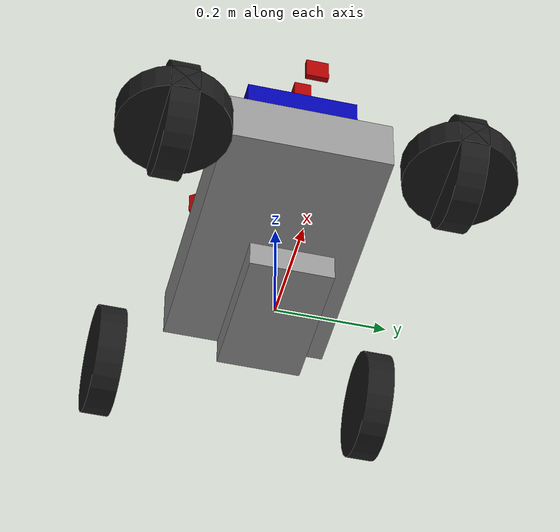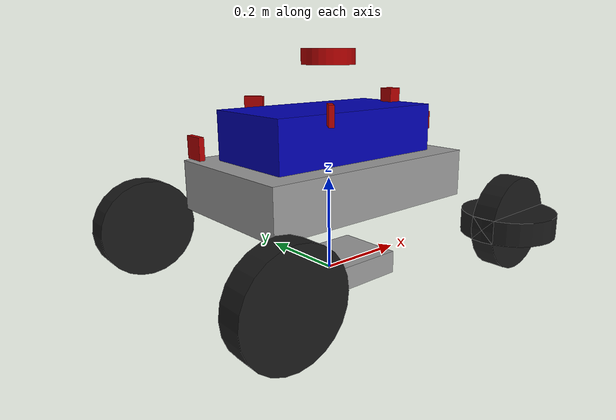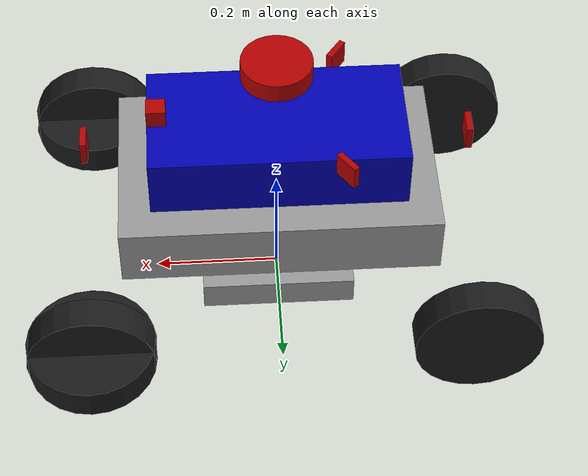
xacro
<?xml version="1.0"?>
<robot name="dorothy"
    xmlns:xacro="http://www.ros.org/wiki/xacro">
    <xacro:include filename="pod.xacro" />
    <xacro:include filename="ackermann_wheels.xacro" />

    <xacro:property name="l_b" value="0.5"/>
    <xacro:property name="w_b" value="0.3"/>
    <xacro:property name="h_b" value="0.1"/>
    <xacro:property name="m_b" value="8"/>
    <xacro:property name="base_footprint_axis_denominator" value="2"/>

    <xacro:property name="wheel_h" value="0.1"/>
    <xacro:property name="wheel_spacing" value="0.1"/>
    <xacro:property name="wheel_dist_from_center" value="0.3"/>

    <link name="base_link">
        <visual>
            <geometry>
                <box size="${l_b} ${w_b} ${h_b}" />
            </geometry>
            <material name="Body_Gray" />
        </visual>
        <collision>
            <geometry>
                <box size="${l_b} ${w_b} ${h_b}" />
            </geometry>
        </collision>
        <xacro:box_inertia m="${m_b}" x="${l_b}" y="${w_b}" z="${h_b}" />
    </link>
    <xacro:property name="pod_h" value="0.1" />
    <joint name="pod_joint" type="fixed">
        <parent link="base_link" />
        <child link="pod" />
        <origin xyz="0 0 ${(pod_h+h_b)/2}" rpy="0 0 ${M_PI}" />
    </joint>
    <gazebo reference="pod_joint">
        <preserveFixedJoint>true</preserveFixedJoint>
    </gazebo>
    <link name="base_footprint">
        <visual>
            <geometry>
                <box size="${l_b / base_footprint_axis_denominator} ${w_b / base_footprint_axis_denominator} ${h_b / base_footprint_axis_denominator}" />
            </geometry>
            <material name="Body_Gray" />
        </visual>
        <xacro:box_inertia m="${m_b / (base_footprint_axis_denominator * base_footprint_axis_denominator * base_footprint_axis_denominator)}" x="${l_b / base_footprint_axis_denominator}" y="${w_b / base_footprint_axis_denominator}" z="${h_b / base_footprint_axis_denominator}" />
    </link>
    <!-- The base footprint of the robot is located underneath the chassis -->
    <joint name="footprint_joint" type="fixed">
        <parent link="base_footprint" />
        <child link="base_link" />
        <origin xyz="0 0 ${r_wheel + wheel_h}" rpy="0 0 ${M_PI}" />
    </joint>
    <gazebo reference="footprint_joint">
        <preserveFixedJoint>true</preserveFixedJoint>
    </gazebo>

    <gazebo reference="base_footprint">
        <material value="Gazebo/Wood" />
    </gazebo>
    <gazebo reference="base_link">
        <material value="Gazebo/Wood" />
    </gazebo>

    <xacro:autocar_front_wheel name="fr" steer_name="r_steer" rpy="0 0 0" xyz="${-wheel_dist_from_center} ${wheel_spacing+(w_b/2)} ${-wheel_h}" base_link_name="base_link"/>
    <xacro:autocar_front_wheel name="fl" steer_name="l_steer" rpy="0 0 0" xyz="${-wheel_dist_from_center} ${-(wheel_spacing+(w_b/2))}  ${-wheel_h}" base_link_name="base_link"/>
    <xacro:autocar_back_wheel name="br" rpy="0 0 0" xyz="${wheel_dist_from_center} ${wheel_spacing+(w_b/2)} ${-wheel_h}" base_link_name="base_link"/>
    <xacro:autocar_back_wheel name="bl" rpy="0 0 0" xyz="${wheel_dist_from_center} ${-(wheel_spacing+(w_b/2))} ${-wheel_h}" base_link_name="base_link"/>

    <xacro:property name="steering_pid" value="100 0 17"/>
    <xacro:property name="steering_i_range" value="0 0"/>
    <xacro:property name="linear_pid" value="1 0 0"/>
    <xacro:property name="linear_i_range" value="0 0"/>

    <gazebo>
        <plugin name='ackermann_drive' filename='libgazebo_ros_ackermann_drive.so'>

            <ros>
                <remapping>cmd_vel:=cmd_vel</remapping>
                <remapping>odom:=wheel/odometry</remapping>
                <remapping>distance:=distance</remapping>
            </ros>

            <update_rate>60.0</update_rate>

            <!-- wheels -->
            <front_left_joint>fl_axle</front_left_joint>
            <front_right_joint>fr_axle</front_right_joint>
            <rear_left_joint>bl_axle</rear_left_joint>
            <rear_right_joint>br_axle</rear_right_joint>
            <left_steering_joint>l_steer</left_steering_joint>
            <right_steering_joint>r_steer</right_steering_joint>

            <!-- Max absolute steer angle for tyre in radians-->
            <!-- Any cmd_vel angular z greater than this would be capped -->
            <max_steer>0.6</max_steer>

            <!-- Max absolute steering angle of steering wheel -->
            <!-- Max absolute steering angle of steering wheel -->
            <max_steering_angle>2</max_steering_angle>

            <!-- Max absolute linear speed in m/s -->
            <max_speed>10</max_speed>

            <!-- PID tuning -->
            <left_steering_pid_gain>${steering_pid} </left_steering_pid_gain>
            <left_steering_i_range>${steering_i_range}</left_steering_i_range>
            <right_steering_pid_gain>${steering_pid}</right_steering_pid_gain>
            <right_steering_i_range>${steering_i_range}</right_steering_i_range>
            <linear_velocity_pid_gain>${linear_pid}</linear_velocity_pid_gain>
            <linear_velocity_i_range>${linear_i_range}</linear_velocity_i_range>

            <!-- output -->
            <publish_odom>true</publish_odom>
            <publish_odom_tf>false</publish_odom_tf>
            <publish_wheel_tf>false</publish_wheel_tf>
            <publish_distance>false</publish_distance>

            <odometry_frame>odom</odometry_frame>
            <robot_base_frame>base_footprint</robot_base_frame>

        </plugin>
    </gazebo>

    <gazebo>
        <plugin name="dorothy2_joint_state" filename="libgazebo_ros_joint_state_publisher.so">
            <ros>
                <remapping>~/out:=joint_states</remapping>
            </ros>
            <update_rate>30</update_rate>
            <joint_name>fl_axle</joint_name>
            <joint_name>fr_axle</joint_name>
            <joint_name>br_axle</joint_name>
            <joint_name>bl_axle</joint_name>
            <joint_name>r_steer</joint_name>
            <joint_name>l_steer</joint_name>
        </plugin>

    </gazebo>
</robot>

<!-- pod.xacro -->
<robot xmlns:xacro="http://ros.org/wiki/xacro">

  <xacro:property name="M_PI" value="3.14159" />
  <xacro:property name="lidar_height_from_pod" value="0.15" />
  <xacro:property name="pod_x" value="0.4"/>
  <xacro:property name="pod_y" value="0.2"/>
  <xacro:property name="pod_z" value="0.1"/>
  <xacro:include filename="lib.xacro" />
  <material name="blue">
    <color rgba="0 0 .7 1" />
  </material>
  <material name="red">
    <color rgba="0.7 0 0 1" />
  </material>

  <link name="pod">
    <visual>
      <origin xyz="0 0 0.0" rpy="0 0 0" />
      <geometry>
        <box size="${pod_x} ${pod_y} ${pod_z}" />
      </geometry>
      <material name="blue" />
    </visual>
    <collision>
      <geometry>
        <box size="${pod_x} ${pod_y} ${pod_z}" />
      </geometry>
    </collision>

    <inertial>
      <mass value="0.1" />
      <origin xyz="0 0 0" />
      <inertia ixx="0.001" ixy="0.0" ixz="0.0" iyy="0.001" iyz="0.0" izz="0.001" />
    </inertial>
  </link>

  <!--_LIDAR -->
  <link name="laser">
    <visual>
      <origin xyz="0 0 0.0" rpy="0 0 0" />
      <geometry>
        <cylinder length="0.0315" radius="0.055" />
      </geometry>
      <material name="red"/>
    </visual>

    <collision>
      <origin xyz="0.015 0 -0.0065" rpy="0 0 0" />
      <geometry>
        <cylinder length="0.0315" radius="0.055" />
      </geometry>
    </collision>

    <inertial>
      <mass value="0.114" />
      <origin xyz="0 0 0" />
      <inertia ixx="0.001" ixy="0.0" ixz="0.0" iyy="0.001" iyz="0.0" izz="0.001" />
    </inertial>
  </link>

  <gazebo reference="laser">
    <material>Gazebo/FlatBlack</material>
    <sensor type="ray" name="lidar_sensor">
      <pose>0 0 0 0 0 0</pose>
      <visualize>false</visualize>
      <update_rate>15</update_rate>
      <ray>
        <scan>
          <horizontal>
            <samples>360</samples>
            <resolution>1</resolution>
            <min_angle>0.0</min_angle>
            <max_angle>6.28319</max_angle>
          </horizontal>
        </scan>
        <range>
          <min>0.120</min>
          <max>10.0</max>
          <resolution>0.050</resolution>
        </range>
        <noise>
          <type>gaussian</type>
          <mean>0.0</mean>
          <stddev>0.01</stddev>
        </noise>
      </ray>
      <plugin name="scan" filename="libgazebo_ros_ray_sensor.so">
        <ros>
          <remapping>~/out:=scan</remapping>
        </ros>
        <output_type>sensor_msgs/LaserScan</output_type>
        <frame_name>laser</frame_name>
      </plugin>
    </sensor>
  </gazebo>
  <joint name="scan_joint" type="fixed">
    <parent link="pod" />
    <child link="laser" />
    <origin xyz="0 0 ${lidar_height_from_pod}" rpy="0 0 3.14" />
  </joint>
  <gazebo reference="scan_joint">
    <preserveFixedJoint>true</preserveFixedJoint>
  </gazebo>

  <!-- IMU -->
  <link name="imu">
    <visual>
      <origin xyz="0 0 0.0" rpy="0 0 0" />
      <geometry>
        <box  size="0.03 0.03 0.03" />
      </geometry>
      <material name="red"/>
    </visual>

    <collision>
      <origin xyz="0 0 0" rpy="0 0 0" />
      <geometry>
        <box length="0.03" width="0.03" height="0.03" />
      </geometry>
    </collision>

    <inertial>
      <mass value="0.114" />
      <origin xyz="0 0 0" />
      <inertia ixx="0.001" ixy="0.0" ixz="0.0" iyy="0.001" iyz="0.0" izz="0.001" />
    </inertial>
  </link>
  <gazebo reference="imu">
    <material>Gazebo/FlatBlack</material>

    <sensor name="my_imu" type="imu">
      <always_on>true</always_on>
      <!-- Publish at 30 hz -->
      <update_rate>30</update_rate>
      <plugin name="my_imu_plugin" filename="libgazebo_ros_imu_sensor.so">
        <ros>
          <!-- Will publish to /imu/data -->
          <namespace>/imu</namespace>
          <remapping>~/out:=data</remapping>
        </ros>
        <!-- frame_name ommited, will be "my_link" -->
      </plugin>
    </sensor>
  </gazebo>
  <joint name="imu_joint" type="fixed">
    <parent link="pod" />
    <child link="imu" />
    <origin xyz="${(pod_x-0.03)/2} 0 ${(pod_z+0.03)/2}" rpy="0 0 3.14" />
  </joint>
  <gazebo reference="imu_joint">
    <preserveFixedJoint>true</preserveFixedJoint>
  </gazebo>

  <xacro:cam suffix="front" xyz="0.3 0.0 0.0" rpy="0 0 ${0}" pod_link_name="pod"/>
  <xacro:cam suffix="right" xyz="-0.1 -0.12 0.05" rpy="0 0 ${-M_PI/5}" pod_link_name="pod"/>
  <xacro:cam suffix="left" xyz="-0.1 0.12 0.05" rpy="0 0 ${M_PI/5}" pod_link_name="pod"/>
  <xacro:cam suffix="rear" xyz="-0.3 0.0 0.0" rpy="0 0 ${M_PI}" pod_link_name="pod"/>

</robot>

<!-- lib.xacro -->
<robot xmlns:xacro="http://ros.org/wiki/xacro">

  <xacro:property name="M_PI" value="3.14159" />

  <xacro:macro name="cylinder_inertia" params="m r h">
    <inertial>
      <mass value="${m}" />
      <inertia ixx="${m*(3*r*r+h*h)/12}" ixy="0" ixz="0" iyy="${m*(3*r*r+h*h)/12}" iyz="0" izz="${m*r*r/2}" />
    </inertial>
  </xacro:macro>

  <xacro:macro name="box_inertia" params="m x y z">
    <inertial>
      <mass value="${m}" />
      <inertia ixx="${m*(y*y+z*z)/12}" ixy="0" ixz="0" iyy="${m*(x*x+z*z)/12}" iyz="0" izz="${m*(x*x+z*z)/12}" />
    </inertial>
  </xacro:macro>

  <xacro:macro name="sphere_inertia" params="m r">
    <inertial>
      <mass value="${m}" />
      <mass value="${m}" />
      <inertial ixx="${2*m*r*r/5}" ixy="0" ixz="0" iyy="${2*m*r*r/5}" iyz="0" izz="${2*m*r*r/5}" />
    </inertial>
  </xacro:macro>
  <xacro:macro name="zero_inertia">
    <xacro:sphere_inertia m="0.01" r="0.01" />
  </xacro:macro>

  <xacro:macro name="transmission" params="joint">
    <ros2_control name="GazeboSystem" type="system">
      <hardware>
        <plugin>gazebo_ros2_control/GazeboSystem</plugin>
      </hardware>
      <joint name="${joint}">
        <command_interface name="effort">
          <param name="min">-1000</param>
          <param name="max">1000</param>
        </command_interface>
        <state_interface name="position">
          <param name="initial_value">0.0</param>
        </state_interface>
        <state_interface name="velocity"/>
        <state_interface name="effort"/>
      </joint>
    </ros2_control>
  </xacro:macro>

  <xacro:macro name="cam" params="suffix xyz rpy pod_link_name">
    <link name="camera_${suffix}">
      <visual>
        <origin xyz="0 0 0.0" rpy="0 0 0" />
        <geometry>
          <box size="0.01 0.04 0.04" />
        </geometry>
        <material name="red" />
      </visual>
      <collision>
        <geometry>
          <box size="0.01 0.04 0.04" />
        </geometry>
      </collision>

      <inertial>
        <mass value="0.01" />
        <origin xyz="0 0 0" />
        <inertia ixx="0.0001" ixy="0.0" ixz="0.0" iyy="0.0001" iyz="0.0" izz="0.0001" />
      </inertial>
    </link>

    <gazebo reference="camera_${suffix}">
      <material>Gazebo/Red</material>
      <sensor name="camera_${suffix}_sensor" type="camera">
        <camera>
          <horizontal_fov>1.5</horizontal_fov>
          <image>
            <width>640</width>
            <height>480</height>
          </image>
          <clip>
            <near>0.1</near>
            <far>1000</far>
          </clip>
        </camera>
        <always_on>1</always_on>
        <update_rate>10</update_rate>
        <visualize>false</visualize>
        <camera name="camera_${suffix}">
          <distortion>
            <k1>0.0</k1>
            <k2>0.0</k2>
            <k3>0.0</k3>
            <p1>0.0</p1>
            <p2>0.0</p2>
            <center> 0.5 0.5 </center>
          </distortion>
        </camera>

        <plugin name="camera_controller" filename="libgazebo_ros_camera.so">

          <ros>
            <namespace></namespace>
          </ros>
          <hack_baseline>0.07</hack_baseline>
          <frame_name>camera_${suffix}</frame_name>
        </plugin>
      </sensor>
    </gazebo>

    <joint name="cam_joint_${suffix}" type="fixed">
      <parent link="${pod_link_name}" />
      <child link="camera_${suffix}" />
      <origin xyz="${xyz}" rpy="${rpy}" />
    </joint>

    <gazebo reference="cam_joint_${suffix}">
        <preserveFixedJoint>true</preserveFixedJoint>
    </gazebo>
  </xacro:macro>

</robot>

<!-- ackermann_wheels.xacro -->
<!-- Macros and impelemnatation of wheels, suspensions and steering system -->

<robot xmlns:xacro="http://ros.org/wiki/xacro">
    <material name="Wheel_Black">
        <color rgba="0.1 0.1 0.1 1" />
    </material>
    <xacro:property name="w_wheel" value="0.05" />
    <xacro:property name="r_wheel" value="0.1" />
    <xacro:property name="m_wheel" value="0.3" />
    <xacro:property name="M_PI" value="3.14159265359" />

    <xacro:property name="fdir" value="0 0 1"/>
    <xacro:property name="kd" value="1e1" />
    <xacro:property name="kp" value="1e5" />
    <xacro:property name="wheel_slip" value="100" />
    <xacro:property name="wheel_mu1" value="1.0" />
    <xacro:property name="wheel_mu2" value="1.0" />

    <xacro:property name="wheel_max_effort" value="20.0" />
    <xacro:property name="wheel_max_velocity" value="20.0" />

    <xacro:macro name="cylinder_inertia" params="m r h">
        <inertial>
            <origin xyz="0 0 0" rpy="0 0 0"/>
            <mass value="${m}" />
            <inertia ixx="${m*(3*r*r+h*h)/12}" ixy="0" ixz="0" iyy="${m*(3*r*r+h*h)/12}" iyz="0" izz="${m*r*r/2}" />
        </inertial>
    </xacro:macro>
    <xacro:macro name="wheel_link" params="name">

        <link name="${name}_1">
            <xacro:cylinder_inertia m="${m_wheel}" r="${r_wheel}" h="${w_wheel}"/>
            <visual>
                <origin rpy="0 0 0" xyz="0 0 0"/>
                <geometry>
                    <cylinder radius="${r_wheel}" length="${w_wheel}" />
                </geometry>
                <material name="Wheel_Black"/>
            </visual>
            <collision>
                <origin rpy="0 0 0" xyz="0 0 0"/>
                <geometry>
                    <cylinder radius="${r_wheel}" length="${w_wheel}" />
                </geometry>
            </collision>
        </link>
    </xacro:macro>

    <xacro:macro name="autocar_back_wheel" params="name rpy xyz base_link_name">
        <xacro:wheel_link name="${name}"/>

        <joint name="${name}_axle" type="continuous">
            <origin rpy="${M_PI/2} 0 0" xyz="${xyz}"/>
            <parent link="${base_link_name}"/>
            <child link="${name}_1"/>
            <axis xyz="0.0 0.0 1.0"/>
            <limit effort="${wheel_max_effort}"  velocity="${wheel_max_velocity}"/>
        </joint>
        <gazebo reference="${name}_1">
            <material value="Gazebo/Black"/>

            <mu1>${wheel_mu1}</mu1>
            <mu2>${wheel_mu2}</mu2>
            <slip1>${wheel_slip}</slip1>
            <kp>${kp}</kp>
            <kd>${kd}</kd>
            <selfCollide>true</selfCollide>
        </gazebo>
    </xacro:macro>

    <xacro:macro name="autocar_front_wheel" params="name steer_name rpy xyz base_link_name">

        <xacro:wheel_link name="${name}"/>
        <link name="${steer_name}_1">
            <inertial>
                <origin rpy="0 0 0" xyz="0.003381 1.5929e-07 0.02162"/>
                <mass value="1"/>
                <inertia ixx="1.0" ixy="0.0" ixz="0.0" iyy="1.0" iyz="0.0" izz="1.0"/>
            </inertial>
            <visual>
                <origin rpy="0 0 0" xyz="0 0 0"/>
                <geometry>
                    <cylinder radius="${r_wheel}" length="${w_wheel}" />
                </geometry>
                <material name="Wheel_Black"/>
            </visual>
        </link>

        <joint name="${steer_name}" type="revolute">
            <origin rpy="0 0 0" xyz="${xyz}"/>
            <parent link="${base_link_name}"/>
            <child link="${steer_name}_1"/>
            <axis xyz="0.0 0.0 1.0"/>
            <dynamics damping="0.0" friction="1.0"/>
            <limit effort="100.0" lower="-0.95" upper="0.95" velocity="100"/>
        </joint>
        <joint name="${name}_axle" type="continuous">
            <origin rpy="${M_PI/2} 0 0" xyz="0.0 0.0 0.0"/>
            <parent link="${steer_name}_1"/>
            <child link="${name}_1"/>
            <axis xyz="0.0 0.0 1.0"/>
            <limit effort="${wheel_max_effort}"  velocity="${wheel_max_velocity}"/>
        </joint>

        <gazebo reference="${steer_name}_1">
            <material value="Gazebo/GreyTransparent " />
            <mu1>0.2</mu1>
            <mu2>0.2</mu2>
            <selfCollide>true</selfCollide>
        </gazebo>
        <gazebo reference="${name}_1">
            <material>Gazebo/DarkGrey</material>
            <mu1>${wheel_mu1}</mu1>
            <mu2>${wheel_mu1}</mu2>
            <slip1>${wheel_slip}</slip1>
            <kp>${kp}</kp>
            <kd>${kd}</kd>
            <selfCollide>true</selfCollide>
        </gazebo>
    </xacro:macro>

</robot>
